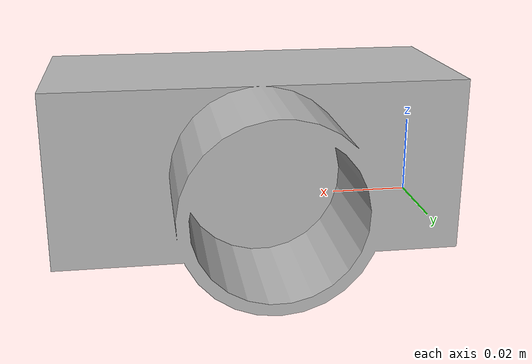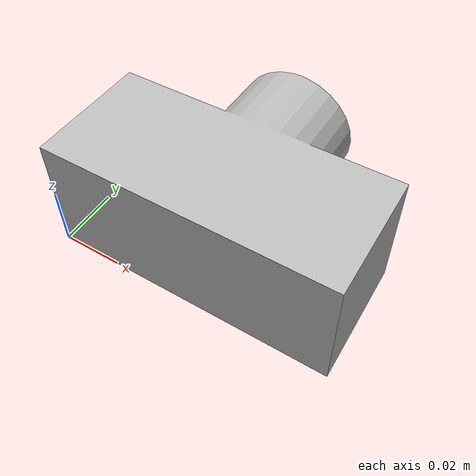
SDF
<?xml version="1.0" ?>
<sdf version="1.4">
  <model name="t_pipe">
    <static>false</static>
    <link name="link">
    <inertial>
      <pose>0.0465 0.04 0.020 0 0 0</pose>
      <mass>0.049263</mass>
	  <inertia>
	    <ixx>0.000032494</ixx>
	    <ixy>0.0</ixy>
	    <ixz>0.0</ixz>
	    <iyy>0.000044475</iyy>
	    <iyz>0.0</iyz>
	    <izz>0.00005166</izz>
	  </inertia>
    </inertial>
      <collision name="collision">
        <pose>0 0 0 0 0 0</pose>
         <geometry>
          <mesh>
            <scale>0.001 0.001 0.001</scale>
            <uri>/catkin_ws/src/models/t_pipe/meshes/collision.STL</uri>
          </mesh>
        </geometry>
          <surface>
            <friction>
              <ode>
                <mu>0.99</mu>
                <mu2>0.99</mu2>
              </ode>
            </friction>
          </surface>
      </collision>
      <visual name="visual">
        <geometry>
          <mesh>
            <scale>0.001 0.001 0.001</scale>
            <uri>/catkin_ws/src/models/t_pipe/meshes/pipe.STL</uri>
          </mesh>
        </geometry>
      </visual>
    </link>
  </model>
</sdf>
